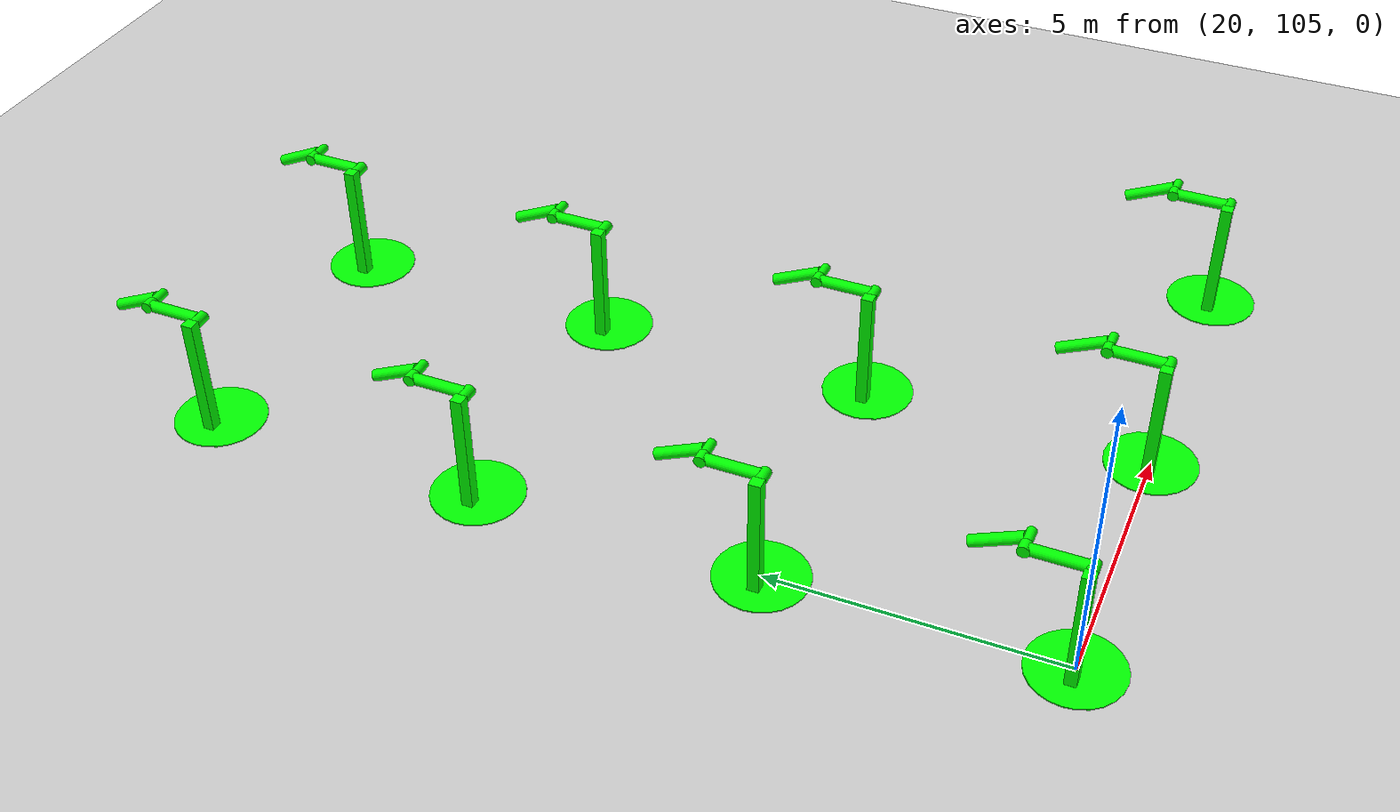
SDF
<sdf version="1.6">
 <world name="double_pendulums">
  <model name="ground_plane">
   <static>true</static>
   <link name="link">
    <collision name="collision">
     <geometry><plane><normal>0 0 1</normal><size>100 100</size></plane></geometry>
    </collision>
    <visual name="visual">
     <geometry><plane><normal>0 0 1</normal><size>100 100</size></plane></geometry>
     <material>
      <ambient>0.8 0.8 0.8 1</ambient>
      <diffuse>0.8 0.8 0.8 1</diffuse>
      <specular>0.8 0.8 0.8 1</specular>
     </material>
    </visual>
   </link>
  </model>
  <model name="dbl_pendulum_539">
   <pose>20 105 0 0 0 0</pose>
   <link name="base">
    <inertial><mass>100</mass></inertial>
    <visual name="vis_plate_on_ground">
     <pose>0 0 0.01 0 0 0</pose>
     <geometry><cylinder><radius>0.8</radius><length>0.02</length></cylinder></geometry>
     <material><ambient>0 1 0 1</ambient><diffuse>0 1 0 1</diffuse><specular>0 1 0 1</specular></material>
    </visual>
    <visual name="vis_pole">
     <pose>-0.275 0 1.1 0 0 0</pose>
     <geometry><box><size>0.2 0.2 2.2</size></box></geometry>
     <material><ambient>0 1 0 1</ambient><diffuse>0 1 0 1</diffuse><specular>0 1 0 1</specular></material>
    </visual>
    <collision name="col_plate_on_ground">
     <pose>0 0 0.01 0 0 0</pose>
     <geometry><cylinder><radius>0.8</radius><length>0.02</length></cylinder></geometry>
    </collision>
    <collision name="col_pole">
     <pose>-0.275 0 1.1 0 0 0</pose>
     <geometry><box><size>0.2 0.2 2.2</size></box></geometry>
    </collision>
   </link>
   <link name="upper_link">
    <pose>0 0 2.1 -1.5708 0 0</pose>
    <inertial><pose>0 0 0.5 0 0 0</pose></inertial>
    <visual name="vis_upper_joint">
     <pose>-0.05 0 0 0 1.5708 0</pose>
     <geometry><cylinder><radius>0.1</radius><length>0.3</length></cylinder></geometry>
     <material><ambient>0 1 0 1</ambient><diffuse>0 1 0 1</diffuse><specular>0 1 0 1</specular></material>
    </visual>
    <visual name="vis_lower_joint">
     <pose>0 0 1.0 0 1.5708 0</pose>
     <geometry><cylinder><radius>0.1</radius><length>0.2</length></cylinder></geometry>
     <material><ambient>0 1 0 1</ambient><diffuse>0 1 0 1</diffuse><specular>0 1 0 1</specular></material>
    </visual>
    <visual name="vis_cylinder">
     <pose>0 0 0.5 0 0 0</pose>
     <geometry><cylinder><radius>0.1</radius><length>0.9</length></cylinder></geometry>
     <material><ambient>0 1 0 1</ambient><diffuse>0 1 0 1</diffuse><specular>0 1 0 1</specular></material>
    </visual>
    <collision name="col_upper_joint">
     <pose>-0.05 0 0 0 1.5708 0</pose>
     <geometry><cylinder><radius>0.1</radius><length>0.3</length></cylinder></geometry>
    </collision>
    <collision name="col_lower_joint">
     <pose>0 0 1.0 0 1.5708 0</pose>
     <geometry><cylinder><radius>0.1</radius><length>0.2</length></cylinder></geometry>
    </collision>
    <collision name="col_cylinder">
     <pose>0 0 0.5 0 0 0</pose>
     <geometry><cylinder><radius>0.1</radius><length>0.9</length></cylinder></geometry>
    </collision>
   </link>
   <link name="lower_link">
    <pose>0.25 1.0 2.1 -2 0 0</pose>
    <inertial><pose>0 0 0.5 0 0 0</pose></inertial>
    <visual name="vis_lower_joint">
     <pose>0 0 0 0 1.5708 0</pose>
     <geometry><cylinder><radius>0.08</radius><length>0.3</length></cylinder></geometry>
     <material><ambient>0 1 0 1</ambient><diffuse>0 1 0 1</diffuse><specular>0 1 0 1</specular></material>
    </visual>
    <visual name="vis_cylinder">
     <pose>0 0 0.5 0 0 0</pose>
     <geometry><cylinder><radius>0.1</radius><length>0.9</length></cylinder></geometry>
     <material><ambient>0 1 0 1</ambient><diffuse>0 1 0 1</diffuse><specular>0 1 0 1</specular></material>
    </visual>
    <collision name="col_lower_joint">
     <pose>0 0 0 0 1.5708 0</pose>
     <geometry><cylinder><radius>0.08</radius><length>0.3</length></cylinder></geometry>
    </collision>
    <collision name="col_cylinder">
     <pose>0 0 0.5 0 0 0</pose>
     <geometry><cylinder><radius>0.1</radius><length>0.9</length></cylinder></geometry>
    </collision>
   </link>
   <joint name="upper_joint" type="revolute">
    <parent>base</parent>
    <child>upper_link</child>
    <axis><xyz>1.0 0 0</xyz></axis>
   </joint>
   <joint name="lower_joint" type="revolute">
    <parent>upper_link</parent>
    <child>lower_link</child>
    <axis><xyz>1.0 0 0</xyz></axis>
   </joint>
  </model>
  <model name="dbl_pendulum_540">
   <pose>25 105 0 0 0 0</pose>
   <link name="base">
    <inertial><mass>100</mass></inertial>
    <visual name="vis_plate_on_ground">
     <pose>0 0 0.01 0 0 0</pose>
     <geometry><cylinder><radius>0.8</radius><length>0.02</length></cylinder></geometry>
     <material><ambient>0 1 0 1</ambient><diffuse>0 1 0 1</diffuse><specular>0 1 0 1</specular></material>
    </visual>
    <visual name="vis_pole">
     <pose>-0.275 0 1.1 0 0 0</pose>
     <geometry><box><size>0.2 0.2 2.2</size></box></geometry>
     <material><ambient>0 1 0 1</ambient><diffuse>0 1 0 1</diffuse><specular>0 1 0 1</specular></material>
    </visual>
    <collision name="col_plate_on_ground">
     <pose>0 0 0.01 0 0 0</pose>
     <geometry><cylinder><radius>0.8</radius><length>0.02</length></cylinder></geometry>
    </collision>
    <collision name="col_pole">
     <pose>-0.275 0 1.1 0 0 0</pose>
     <geometry><box><size>0.2 0.2 2.2</size></box></geometry>
    </collision>
   </link>
   <link name="upper_link">
    <pose>0 0 2.1 -1.5708 0 0</pose>
    <inertial><pose>0 0 0.5 0 0 0</pose></inertial>
    <visual name="vis_upper_joint">
     <pose>-0.05 0 0 0 1.5708 0</pose>
     <geometry><cylinder><radius>0.1</radius><length>0.3</length></cylinder></geometry>
     <material><ambient>0 1 0 1</ambient><diffuse>0 1 0 1</diffuse><specular>0 1 0 1</specular></material>
    </visual>
    <visual name="vis_lower_joint">
     <pose>0 0 1.0 0 1.5708 0</pose>
     <geometry><cylinder><radius>0.1</radius><length>0.2</length></cylinder></geometry>
     <material><ambient>0 1 0 1</ambient><diffuse>0 1 0 1</diffuse><specular>0 1 0 1</specular></material>
    </visual>
    <visual name="vis_cylinder">
     <pose>0 0 0.5 0 0 0</pose>
     <geometry><cylinder><radius>0.1</radius><length>0.9</length></cylinder></geometry>
     <material><ambient>0 1 0 1</ambient><diffuse>0 1 0 1</diffuse><specular>0 1 0 1</specular></material>
    </visual>
    <collision name="col_upper_joint">
     <pose>-0.05 0 0 0 1.5708 0</pose>
     <geometry><cylinder><radius>0.1</radius><length>0.3</length></cylinder></geometry>
    </collision>
    <collision name="col_lower_joint">
     <pose>0 0 1.0 0 1.5708 0</pose>
     <geometry><cylinder><radius>0.1</radius><length>0.2</length></cylinder></geometry>
    </collision>
    <collision name="col_cylinder">
     <pose>0 0 0.5 0 0 0</pose>
     <geometry><cylinder><radius>0.1</radius><length>0.9</length></cylinder></geometry>
    </collision>
   </link>
   <link name="lower_link">
    <pose>0.25 1.0 2.1 -2 0 0</pose>
    <inertial><pose>0 0 0.5 0 0 0</pose></inertial>
    <visual name="vis_lower_joint">
     <pose>0 0 0 0 1.5708 0</pose>
     <geometry><cylinder><radius>0.08</radius><length>0.3</length></cylinder></geometry>
     <material><ambient>0 1 0 1</ambient><diffuse>0 1 0 1</diffuse><specular>0 1 0 1</specular></material>
    </visual>
    <visual name="vis_cylinder">
     <pose>0 0 0.5 0 0 0</pose>
     <geometry><cylinder><radius>0.1</radius><length>0.9</length></cylinder></geometry>
     <material><ambient>0 1 0 1</ambient><diffuse>0 1 0 1</diffuse><specular>0 1 0 1</specular></material>
    </visual>
    <collision name="col_lower_joint">
     <pose>0 0 0 0 1.5708 0</pose>
     <geometry><cylinder><radius>0.08</radius><length>0.3</length></cylinder></geometry>
    </collision>
    <collision name="col_cylinder">
     <pose>0 0 0.5 0 0 0</pose>
     <geometry><cylinder><radius>0.1</radius><length>0.9</length></cylinder></geometry>
    </collision>
   </link>
   <joint name="upper_joint" type="revolute">
    <parent>base</parent>
    <child>upper_link</child>
    <axis><xyz>1.0 0 0</xyz></axis>
   </joint>
   <joint name="lower_joint" type="revolute">
    <parent>upper_link</parent>
    <child>lower_link</child>
    <axis><xyz>1.0 0 0</xyz></axis>
   </joint>
  </model>
  <model name="dbl_pendulum_541">
   <pose>30 105 0 0 0 0</pose>
   <link name="base">
    <inertial><mass>100</mass></inertial>
    <visual name="vis_plate_on_ground">
     <pose>0 0 0.01 0 0 0</pose>
     <geometry><cylinder><radius>0.8</radius><length>0.02</length></cylinder></geometry>
     <material><ambient>0 1 0 1</ambient><diffuse>0 1 0 1</diffuse><specular>0 1 0 1</specular></material>
    </visual>
    <visual name="vis_pole">
     <pose>-0.275 0 1.1 0 0 0</pose>
     <geometry><box><size>0.2 0.2 2.2</size></box></geometry>
     <material><ambient>0 1 0 1</ambient><diffuse>0 1 0 1</diffuse><specular>0 1 0 1</specular></material>
    </visual>
    <collision name="col_plate_on_ground">
     <pose>0 0 0.01 0 0 0</pose>
     <geometry><cylinder><radius>0.8</radius><length>0.02</length></cylinder></geometry>
    </collision>
    <collision name="col_pole">
     <pose>-0.275 0 1.1 0 0 0</pose>
     <geometry><box><size>0.2 0.2 2.2</size></box></geometry>
    </collision>
   </link>
   <link name="upper_link">
    <pose>0 0 2.1 -1.5708 0 0</pose>
    <inertial><pose>0 0 0.5 0 0 0</pose></inertial>
    <visual name="vis_upper_joint">
     <pose>-0.05 0 0 0 1.5708 0</pose>
     <geometry><cylinder><radius>0.1</radius><length>0.3</length></cylinder></geometry>
     <material><ambient>0 1 0 1</ambient><diffuse>0 1 0 1</diffuse><specular>0 1 0 1</specular></material>
    </visual>
    <visual name="vis_lower_joint">
     <pose>0 0 1.0 0 1.5708 0</pose>
     <geometry><cylinder><radius>0.1</radius><length>0.2</length></cylinder></geometry>
     <material><ambient>0 1 0 1</ambient><diffuse>0 1 0 1</diffuse><specular>0 1 0 1</specular></material>
    </visual>
    <visual name="vis_cylinder">
     <pose>0 0 0.5 0 0 0</pose>
     <geometry><cylinder><radius>0.1</radius><length>0.9</length></cylinder></geometry>
     <material><ambient>0 1 0 1</ambient><diffuse>0 1 0 1</diffuse><specular>0 1 0 1</specular></material>
    </visual>
    <collision name="col_upper_joint">
     <pose>-0.05 0 0 0 1.5708 0</pose>
     <geometry><cylinder><radius>0.1</radius><length>0.3</length></cylinder></geometry>
    </collision>
    <collision name="col_lower_joint">
     <pose>0 0 1.0 0 1.5708 0</pose>
     <geometry><cylinder><radius>0.1</radius><length>0.2</length></cylinder></geometry>
    </collision>
    <collision name="col_cylinder">
     <pose>0 0 0.5 0 0 0</pose>
     <geometry><cylinder><radius>0.1</radius><length>0.9</length></cylinder></geometry>
    </collision>
   </link>
   <link name="lower_link">
    <pose>0.25 1.0 2.1 -2 0 0</pose>
    <inertial><pose>0 0 0.5 0 0 0</pose></inertial>
    <visual name="vis_lower_joint">
     <pose>0 0 0 0 1.5708 0</pose>
     <geometry><cylinder><radius>0.08</radius><length>0.3</length></cylinder></geometry>
     <material><ambient>0 1 0 1</ambient><diffuse>0 1 0 1</diffuse><specular>0 1 0 1</specular></material>
    </visual>
    <visual name="vis_cylinder">
     <pose>0 0 0.5 0 0 0</pose>
     <geometry><cylinder><radius>0.1</radius><length>0.9</length></cylinder></geometry>
     <material><ambient>0 1 0 1</ambient><diffuse>0 1 0 1</diffuse><specular>0 1 0 1</specular></material>
    </visual>
    <collision name="col_lower_joint">
     <pose>0 0 0 0 1.5708 0</pose>
     <geometry><cylinder><radius>0.08</radius><length>0.3</length></cylinder></geometry>
    </collision>
    <collision name="col_cylinder">
     <pose>0 0 0.5 0 0 0</pose>
     <geometry><cylinder><radius>0.1</radius><length>0.9</length></cylinder></geometry>
    </collision>
   </link>
   <joint name="upper_joint" type="revolute">
    <parent>base</parent>
    <child>upper_link</child>
    <axis><xyz>1.0 0 0</xyz></axis>
   </joint>
   <joint name="lower_joint" type="revolute">
    <parent>upper_link</parent>
    <child>lower_link</child>
    <axis><xyz>1.0 0 0</xyz></axis>
   </joint>
  </model>
  <model name="dbl_pendulum_564">
   <pose>20 110 0 0 0 0</pose>
   <link name="base">
    <inertial><mass>100</mass></inertial>
    <visual name="vis_plate_on_ground">
     <pose>0 0 0.01 0 0 0</pose>
     <geometry><cylinder><radius>0.8</radius><length>0.02</length></cylinder></geometry>
     <material><ambient>0 1 0 1</ambient><diffuse>0 1 0 1</diffuse><specular>0 1 0 1</specular></material>
    </visual>
    <visual name="vis_pole">
     <pose>-0.275 0 1.1 0 0 0</pose>
     <geometry><box><size>0.2 0.2 2.2</size></box></geometry>
     <material><ambient>0 1 0 1</ambient><diffuse>0 1 0 1</diffuse><specular>0 1 0 1</specular></material>
    </visual>
    <collision name="col_plate_on_ground">
     <pose>0 0 0.01 0 0 0</pose>
     <geometry><cylinder><radius>0.8</radius><length>0.02</length></cylinder></geometry>
    </collision>
    <collision name="col_pole">
     <pose>-0.275 0 1.1 0 0 0</pose>
     <geometry><box><size>0.2 0.2 2.2</size></box></geometry>
    </collision>
   </link>
   <link name="upper_link">
    <pose>0 0 2.1 -1.5708 0 0</pose>
    <inertial><pose>0 0 0.5 0 0 0</pose></inertial>
    <visual name="vis_upper_joint">
     <pose>-0.05 0 0 0 1.5708 0</pose>
     <geometry><cylinder><radius>0.1</radius><length>0.3</length></cylinder></geometry>
     <material><ambient>0 1 0 1</ambient><diffuse>0 1 0 1</diffuse><specular>0 1 0 1</specular></material>
    </visual>
    <visual name="vis_lower_joint">
     <pose>0 0 1.0 0 1.5708 0</pose>
     <geometry><cylinder><radius>0.1</radius><length>0.2</length></cylinder></geometry>
     <material><ambient>0 1 0 1</ambient><diffuse>0 1 0 1</diffuse><specular>0 1 0 1</specular></material>
    </visual>
    <visual name="vis_cylinder">
     <pose>0 0 0.5 0 0 0</pose>
     <geometry><cylinder><radius>0.1</radius><length>0.9</length></cylinder></geometry>
     <material><ambient>0 1 0 1</ambient><diffuse>0 1 0 1</diffuse><specular>0 1 0 1</specular></material>
    </visual>
    <collision name="col_upper_joint">
     <pose>-0.05 0 0 0 1.5708 0</pose>
     <geometry><cylinder><radius>0.1</radius><length>0.3</length></cylinder></geometry>
    </collision>
    <collision name="col_lower_joint">
     <pose>0 0 1.0 0 1.5708 0</pose>
     <geometry><cylinder><radius>0.1</radius><length>0.2</length></cylinder></geometry>
    </collision>
    <collision name="col_cylinder">
     <pose>0 0 0.5 0 0 0</pose>
     <geometry><cylinder><radius>0.1</radius><length>0.9</length></cylinder></geometry>
    </collision>
   </link>
   <link name="lower_link">
    <pose>0.25 1.0 2.1 -2 0 0</pose>
    <inertial><pose>0 0 0.5 0 0 0</pose></inertial>
    <visual name="vis_lower_joint">
     <pose>0 0 0 0 1.5708 0</pose>
     <geometry><cylinder><radius>0.08</radius><length>0.3</length></cylinder></geometry>
     <material><ambient>0 1 0 1</ambient><diffuse>0 1 0 1</diffuse><specular>0 1 0 1</specular></material>
    </visual>
    <visual name="vis_cylinder">
     <pose>0 0 0.5 0 0 0</pose>
     <geometry><cylinder><radius>0.1</radius><length>0.9</length></cylinder></geometry>
     <material><ambient>0 1 0 1</ambient><diffuse>0 1 0 1</diffuse><specular>0 1 0 1</specular></material>
    </visual>
    <collision name="col_lower_joint">
     <pose>0 0 0 0 1.5708 0</pose>
     <geometry><cylinder><radius>0.08</radius><length>0.3</length></cylinder></geometry>
    </collision>
    <collision name="col_cylinder">
     <pose>0 0 0.5 0 0 0</pose>
     <geometry><cylinder><radius>0.1</radius><length>0.9</length></cylinder></geometry>
    </collision>
   </link>
   <joint name="upper_joint" type="revolute">
    <parent>base</parent>
    <child>upper_link</child>
    <axis><xyz>1.0 0 0</xyz></axis>
   </joint>
   <joint name="lower_joint" type="revolute">
    <parent>upper_link</parent>
    <child>lower_link</child>
    <axis><xyz>1.0 0 0</xyz></axis>
   </joint>
  </model>
  <model name="dbl_pendulum_565">
   <pose>25 110 0 0 0 0</pose>
   <link name="base">
    <inertial><mass>100</mass></inertial>
    <visual name="vis_plate_on_ground">
     <pose>0 0 0.01 0 0 0</pose>
     <geometry><cylinder><radius>0.8</radius><length>0.02</length></cylinder></geometry>
     <material><ambient>0 1 0 1</ambient><diffuse>0 1 0 1</diffuse><specular>0 1 0 1</specular></material>
    </visual>
    <visual name="vis_pole">
     <pose>-0.275 0 1.1 0 0 0</pose>
     <geometry><box><size>0.2 0.2 2.2</size></box></geometry>
     <material><ambient>0 1 0 1</ambient><diffuse>0 1 0 1</diffuse><specular>0 1 0 1</specular></material>
    </visual>
    <collision name="col_plate_on_ground">
     <pose>0 0 0.01 0 0 0</pose>
     <geometry><cylinder><radius>0.8</radius><length>0.02</length></cylinder></geometry>
    </collision>
    <collision name="col_pole">
     <pose>-0.275 0 1.1 0 0 0</pose>
     <geometry><box><size>0.2 0.2 2.2</size></box></geometry>
    </collision>
   </link>
   <link name="upper_link">
    <pose>0 0 2.1 -1.5708 0 0</pose>
    <inertial><pose>0 0 0.5 0 0 0</pose></inertial>
    <visual name="vis_upper_joint">
     <pose>-0.05 0 0 0 1.5708 0</pose>
     <geometry><cylinder><radius>0.1</radius><length>0.3</length></cylinder></geometry>
     <material><ambient>0 1 0 1</ambient><diffuse>0 1 0 1</diffuse><specular>0 1 0 1</specular></material>
    </visual>
    <visual name="vis_lower_joint">
     <pose>0 0 1.0 0 1.5708 0</pose>
     <geometry><cylinder><radius>0.1</radius><length>0.2</length></cylinder></geometry>
     <material><ambient>0 1 0 1</ambient><diffuse>0 1 0 1</diffuse><specular>0 1 0 1</specular></material>
    </visual>
    <visual name="vis_cylinder">
     <pose>0 0 0.5 0 0 0</pose>
     <geometry><cylinder><radius>0.1</radius><length>0.9</length></cylinder></geometry>
     <material><ambient>0 1 0 1</ambient><diffuse>0 1 0 1</diffuse><specular>0 1 0 1</specular></material>
    </visual>
    <collision name="col_upper_joint">
     <pose>-0.05 0 0 0 1.5708 0</pose>
     <geometry><cylinder><radius>0.1</radius><length>0.3</length></cylinder></geometry>
    </collision>
    <collision name="col_lower_joint">
     <pose>0 0 1.0 0 1.5708 0</pose>
     <geometry><cylinder><radius>0.1</radius><length>0.2</length></cylinder></geometry>
    </collision>
    <collision name="col_cylinder">
     <pose>0 0 0.5 0 0 0</pose>
     <geometry><cylinder><radius>0.1</radius><length>0.9</length></cylinder></geometry>
    </collision>
   </link>
   <link name="lower_link">
    <pose>0.25 1.0 2.1 -2 0 0</pose>
    <inertial><pose>0 0 0.5 0 0 0</pose></inertial>
    <visual name="vis_lower_joint">
     <pose>0 0 0 0 1.5708 0</pose>
     <geometry><cylinder><radius>0.08</radius><length>0.3</length></cylinder></geometry>
     <material><ambient>0 1 0 1</ambient><diffuse>0 1 0 1</diffuse><specular>0 1 0 1</specular></material>
    </visual>
    <visual name="vis_cylinder">
     <pose>0 0 0.5 0 0 0</pose>
     <geometry><cylinder><radius>0.1</radius><length>0.9</length></cylinder></geometry>
     <material><ambient>0 1 0 1</ambient><diffuse>0 1 0 1</diffuse><specular>0 1 0 1</specular></material>
    </visual>
    <collision name="col_lower_joint">
     <pose>0 0 0 0 1.5708 0</pose>
     <geometry><cylinder><radius>0.08</radius><length>0.3</length></cylinder></geometry>
    </collision>
    <collision name="col_cylinder">
     <pose>0 0 0.5 0 0 0</pose>
     <geometry><cylinder><radius>0.1</radius><length>0.9</length></cylinder></geometry>
    </collision>
   </link>
   <joint name="upper_joint" type="revolute">
    <parent>base</parent>
    <child>upper_link</child>
    <axis><xyz>1.0 0 0</xyz></axis>
   </joint>
   <joint name="lower_joint" type="revolute">
    <parent>upper_link</parent>
    <child>lower_link</child>
    <axis><xyz>1.0 0 0</xyz></axis>
   </joint>
  </model>
  <model name="dbl_pendulum_589">
   <pose>20 115 0 0 0 0</pose>
   <link name="base">
    <inertial><mass>100</mass></inertial>
    <visual name="vis_plate_on_ground">
     <pose>0 0 0.01 0 0 0</pose>
     <geometry><cylinder><radius>0.8</radius><length>0.02</length></cylinder></geometry>
     <material><ambient>0 1 0 1</ambient><diffuse>0 1 0 1</diffuse><specular>0 1 0 1</specular></material>
    </visual>
    <visual name="vis_pole">
     <pose>-0.275 0 1.1 0 0 0</pose>
     <geometry><box><size>0.2 0.2 2.2</size></box></geometry>
     <material><ambient>0 1 0 1</ambient><diffuse>0 1 0 1</diffuse><specular>0 1 0 1</specular></material>
    </visual>
    <collision name="col_plate_on_ground">
     <pose>0 0 0.01 0 0 0</pose>
     <geometry><cylinder><radius>0.8</radius><length>0.02</length></cylinder></geometry>
    </collision>
    <collision name="col_pole">
     <pose>-0.275 0 1.1 0 0 0</pose>
     <geometry><box><size>0.2 0.2 2.2</size></box></geometry>
    </collision>
   </link>
   <link name="upper_link">
    <pose>0 0 2.1 -1.5708 0 0</pose>
    <inertial><pose>0 0 0.5 0 0 0</pose></inertial>
    <visual name="vis_upper_joint">
     <pose>-0.05 0 0 0 1.5708 0</pose>
     <geometry><cylinder><radius>0.1</radius><length>0.3</length></cylinder></geometry>
     <material><ambient>0 1 0 1</ambient><diffuse>0 1 0 1</diffuse><specular>0 1 0 1</specular></material>
    </visual>
    <visual name="vis_lower_joint">
     <pose>0 0 1.0 0 1.5708 0</pose>
     <geometry><cylinder><radius>0.1</radius><length>0.2</length></cylinder></geometry>
     <material><ambient>0 1 0 1</ambient><diffuse>0 1 0 1</diffuse><specular>0 1 0 1</specular></material>
    </visual>
    <visual name="vis_cylinder">
     <pose>0 0 0.5 0 0 0</pose>
     <geometry><cylinder><radius>0.1</radius><length>0.9</length></cylinder></geometry>
     <material><ambient>0 1 0 1</ambient><diffuse>0 1 0 1</diffuse><specular>0 1 0 1</specular></material>
    </visual>
    <collision name="col_upper_joint">
     <pose>-0.05 0 0 0 1.5708 0</pose>
     <geometry><cylinder><radius>0.1</radius><length>0.3</length></cylinder></geometry>
    </collision>
    <collision name="col_lower_joint">
     <pose>0 0 1.0 0 1.5708 0</pose>
     <geometry><cylinder><radius>0.1</radius><length>0.2</length></cylinder></geometry>
    </collision>
    <collision name="col_cylinder">
     <pose>0 0 0.5 0 0 0</pose>
     <geometry><cylinder><radius>0.1</radius><length>0.9</length></cylinder></geometry>
    </collision>
   </link>
   <link name="lower_link">
    <pose>0.25 1.0 2.1 -2 0 0</pose>
    <inertial><pose>0 0 0.5 0 0 0</pose></inertial>
    <visual name="vis_lower_joint">
     <pose>0 0 0 0 1.5708 0</pose>
     <geometry><cylinder><radius>0.08</radius><length>0.3</length></cylinder></geometry>
     <material><ambient>0 1 0 1</ambient><diffuse>0 1 0 1</diffuse><specular>0 1 0 1</specular></material>
    </visual>
    <visual name="vis_cylinder">
     <pose>0 0 0.5 0 0 0</pose>
     <geometry><cylinder><radius>0.1</radius><length>0.9</length></cylinder></geometry>
     <material><ambient>0 1 0 1</ambient><diffuse>0 1 0 1</diffuse><specular>0 1 0 1</specular></material>
    </visual>
    <collision name="col_lower_joint">
     <pose>0 0 0 0 1.5708 0</pose>
     <geometry><cylinder><radius>0.08</radius><length>0.3</length></cylinder></geometry>
    </collision>
    <collision name="col_cylinder">
     <pose>0 0 0.5 0 0 0</pose>
     <geometry><cylinder><radius>0.1</radius><length>0.9</length></cylinder></geometry>
    </collision>
   </link>
   <joint name="upper_joint" type="revolute">
    <parent>base</parent>
    <child>upper_link</child>
    <axis><xyz>1.0 0 0</xyz></axis>
   </joint>
   <joint name="lower_joint" type="revolute">
    <parent>upper_link</parent>
    <child>lower_link</child>
    <axis><xyz>1.0 0 0</xyz></axis>
   </joint>
  </model>
  <model name="dbl_pendulum_590">
   <pose>25 115 0 0 0 0</pose>
   <link name="base">
    <inertial><mass>100</mass></inertial>
    <visual name="vis_plate_on_ground">
     <pose>0 0 0.01 0 0 0</pose>
     <geometry><cylinder><radius>0.8</radius><length>0.02</length></cylinder></geometry>
     <material><ambient>0 1 0 1</ambient><diffuse>0 1 0 1</diffuse><specular>0 1 0 1</specular></material>
    </visual>
    <visual name="vis_pole">
     <pose>-0.275 0 1.1 0 0 0</pose>
     <geometry><box><size>0.2 0.2 2.2</size></box></geometry>
     <material><ambient>0 1 0 1</ambient><diffuse>0 1 0 1</diffuse><specular>0 1 0 1</specular></material>
    </visual>
    <collision name="col_plate_on_ground">
     <pose>0 0 0.01 0 0 0</pose>
     <geometry><cylinder><radius>0.8</radius><length>0.02</length></cylinder></geometry>
    </collision>
    <collision name="col_pole">
     <pose>-0.275 0 1.1 0 0 0</pose>
     <geometry><box><size>0.2 0.2 2.2</size></box></geometry>
    </collision>
   </link>
   <link name="upper_link">
    <pose>0 0 2.1 -1.5708 0 0</pose>
    <inertial><pose>0 0 0.5 0 0 0</pose></inertial>
    <visual name="vis_upper_joint">
     <pose>-0.05 0 0 0 1.5708 0</pose>
     <geometry><cylinder><radius>0.1</radius><length>0.3</length></cylinder></geometry>
     <material><ambient>0 1 0 1</ambient><diffuse>0 1 0 1</diffuse><specular>0 1 0 1</specular></material>
    </visual>
    <visual name="vis_lower_joint">
     <pose>0 0 1.0 0 1.5708 0</pose>
     <geometry><cylinder><radius>0.1</radius><length>0.2</length></cylinder></geometry>
     <material><ambient>0 1 0 1</ambient><diffuse>0 1 0 1</diffuse><specular>0 1 0 1</specular></material>
    </visual>
    <visual name="vis_cylinder">
     <pose>0 0 0.5 0 0 0</pose>
     <geometry><cylinder><radius>0.1</radius><length>0.9</length></cylinder></geometry>
     <material><ambient>0 1 0 1</ambient><diffuse>0 1 0 1</diffuse><specular>0 1 0 1</specular></material>
    </visual>
    <collision name="col_upper_joint">
     <pose>-0.05 0 0 0 1.5708 0</pose>
     <geometry><cylinder><radius>0.1</radius><length>0.3</length></cylinder></geometry>
    </collision>
    <collision name="col_lower_joint">
     <pose>0 0 1.0 0 1.5708 0</pose>
     <geometry><cylinder><radius>0.1</radius><length>0.2</length></cylinder></geometry>
    </collision>
    <collision name="col_cylinder">
     <pose>0 0 0.5 0 0 0</pose>
     <geometry><cylinder><radius>0.1</radius><length>0.9</length></cylinder></geometry>
    </collision>
   </link>
   <link name="lower_link">
    <pose>0.25 1.0 2.1 -2 0 0</pose>
    <inertial><pose>0 0 0.5 0 0 0</pose></inertial>
    <visual name="vis_lower_joint">
     <pose>0 0 0 0 1.5708 0</pose>
     <geometry><cylinder><radius>0.08</radius><length>0.3</length></cylinder></geometry>
     <material><ambient>0 1 0 1</ambient><diffuse>0 1 0 1</diffuse><specular>0 1 0 1</specular></material>
    </visual>
    <visual name="vis_cylinder">
     <pose>0 0 0.5 0 0 0</pose>
     <geometry><cylinder><radius>0.1</radius><length>0.9</length></cylinder></geometry>
     <material><ambient>0 1 0 1</ambient><diffuse>0 1 0 1</diffuse><specular>0 1 0 1</specular></material>
    </visual>
    <collision name="col_lower_joint">
     <pose>0 0 0 0 1.5708 0</pose>
     <geometry><cylinder><radius>0.08</radius><length>0.3</length></cylinder></geometry>
    </collision>
    <collision name="col_cylinder">
     <pose>0 0 0.5 0 0 0</pose>
     <geometry><cylinder><radius>0.1</radius><length>0.9</length></cylinder></geometry>
    </collision>
   </link>
   <joint name="upper_joint" type="revolute">
    <parent>base</parent>
    <child>upper_link</child>
    <axis><xyz>1.0 0 0</xyz></axis>
   </joint>
   <joint name="lower_joint" type="revolute">
    <parent>upper_link</parent>
    <child>lower_link</child>
    <axis><xyz>1.0 0 0</xyz></axis>
   </joint>
  </model>
  <model name="dbl_pendulum_614">
   <pose>20 120 0 0 0 0</pose>
   <link name="base">
    <inertial><mass>100</mass></inertial>
    <visual name="vis_plate_on_ground">
     <pose>0 0 0.01 0 0 0</pose>
     <geometry><cylinder><radius>0.8</radius><length>0.02</length></cylinder></geometry>
     <material><ambient>0 1 0 1</ambient><diffuse>0 1 0 1</diffuse><specular>0 1 0 1</specular></material>
    </visual>
    <visual name="vis_pole">
     <pose>-0.275 0 1.1 0 0 0</pose>
     <geometry><box><size>0.2 0.2 2.2</size></box></geometry>
     <material><ambient>0 1 0 1</ambient><diffuse>0 1 0 1</diffuse><specular>0 1 0 1</specular></material>
    </visual>
    <collision name="col_plate_on_ground">
     <pose>0 0 0.01 0 0 0</pose>
     <geometry><cylinder><radius>0.8</radius><length>0.02</length></cylinder></geometry>
    </collision>
    <collision name="col_pole">
     <pose>-0.275 0 1.1 0 0 0</pose>
     <geometry><box><size>0.2 0.2 2.2</size></box></geometry>
    </collision>
   </link>
   <link name="upper_link">
    <pose>0 0 2.1 -1.5708 0 0</pose>
    <inertial><pose>0 0 0.5 0 0 0</pose></inertial>
    <visual name="vis_upper_joint">
     <pose>-0.05 0 0 0 1.5708 0</pose>
     <geometry><cylinder><radius>0.1</radius><length>0.3</length></cylinder></geometry>
     <material><ambient>0 1 0 1</ambient><diffuse>0 1 0 1</diffuse><specular>0 1 0 1</specular></material>
    </visual>
    <visual name="vis_lower_joint">
     <pose>0 0 1.0 0 1.5708 0</pose>
     <geometry><cylinder><radius>0.1</radius><length>0.2</length></cylinder></geometry>
     <material><ambient>0 1 0 1</ambient><diffuse>0 1 0 1</diffuse><specular>0 1 0 1</specular></material>
    </visual>
    <visual name="vis_cylinder">
     <pose>0 0 0.5 0 0 0</pose>
     <geometry><cylinder><radius>0.1</radius><length>0.9</length></cylinder></geometry>
     <material><ambient>0 1 0 1</ambient><diffuse>0 1 0 1</diffuse><specular>0 1 0 1</specular></material>
    </visual>
    <collision name="col_upper_joint">
     <pose>-0.05 0 0 0 1.5708 0</pose>
     <geometry><cylinder><radius>0.1</radius><length>0.3</length></cylinder></geometry>
    </collision>
    <collision name="col_lower_joint">
     <pose>0 0 1.0 0 1.5708 0</pose>
     <geometry><cylinder><radius>0.1</radius><length>0.2</length></cylinder></geometry>
    </collision>
    <collision name="col_cylinder">
     <pose>0 0 0.5 0 0 0</pose>
     <geometry><cylinder><radius>0.1</radius><length>0.9</length></cylinder></geometry>
    </collision>
   </link>
   <link name="lower_link">
    <pose>0.25 1.0 2.1 -2 0 0</pose>
    <inertial><pose>0 0 0.5 0 0 0</pose></inertial>
    <visual name="vis_lower_joint">
     <pose>0 0 0 0 1.5708 0</pose>
     <geometry><cylinder><radius>0.08</radius><length>0.3</length></cylinder></geometry>
     <material><ambient>0 1 0 1</ambient><diffuse>0 1 0 1</diffuse><specular>0 1 0 1</specular></material>
    </visual>
    <visual name="vis_cylinder">
     <pose>0 0 0.5 0 0 0</pose>
     <geometry><cylinder><radius>0.1</radius><length>0.9</length></cylinder></geometry>
     <material><ambient>0 1 0 1</ambient><diffuse>0 1 0 1</diffuse><specular>0 1 0 1</specular></material>
    </visual>
    <collision name="col_lower_joint">
     <pose>0 0 0 0 1.5708 0</pose>
     <geometry><cylinder><radius>0.08</radius><length>0.3</length></cylinder></geometry>
    </collision>
    <collision name="col_cylinder">
     <pose>0 0 0.5 0 0 0</pose>
     <geometry><cylinder><radius>0.1</radius><length>0.9</length></cylinder></geometry>
    </collision>
   </link>
   <joint name="upper_joint" type="revolute">
    <parent>base</parent>
    <child>upper_link</child>
    <axis><xyz>1.0 0 0</xyz></axis>
   </joint>
   <joint name="lower_joint" type="revolute">
    <parent>upper_link</parent>
    <child>lower_link</child>
    <axis><xyz>1.0 0 0</xyz></axis>
   </joint>
  </model>
  <model name="dbl_pendulum_615">
   <pose>25 120 0 0 0 0</pose>
   <link name="base">
    <inertial><mass>100</mass></inertial>
    <visual name="vis_plate_on_ground">
     <pose>0 0 0.01 0 0 0</pose>
     <geometry><cylinder><radius>0.8</radius><length>0.02</length></cylinder></geometry>
     <material><ambient>0 1 0 1</ambient><diffuse>0 1 0 1</diffuse><specular>0 1 0 1</specular></material>
    </visual>
    <visual name="vis_pole">
     <pose>-0.275 0 1.1 0 0 0</pose>
     <geometry><box><size>0.2 0.2 2.2</size></box></geometry>
     <material><ambient>0 1 0 1</ambient><diffuse>0 1 0 1</diffuse><specular>0 1 0 1</specular></material>
    </visual>
    <collision name="col_plate_on_ground">
     <pose>0 0 0.01 0 0 0</pose>
     <geometry><cylinder><radius>0.8</radius><length>0.02</length></cylinder></geometry>
    </collision>
    <collision name="col_pole">
     <pose>-0.275 0 1.1 0 0 0</pose>
     <geometry><box><size>0.2 0.2 2.2</size></box></geometry>
    </collision>
   </link>
   <link name="upper_link">
    <pose>0 0 2.1 -1.5708 0 0</pose>
    <inertial><pose>0 0 0.5 0 0 0</pose></inertial>
    <visual name="vis_upper_joint">
     <pose>-0.05 0 0 0 1.5708 0</pose>
     <geometry><cylinder><radius>0.1</radius><length>0.3</length></cylinder></geometry>
     <material><ambient>0 1 0 1</ambient><diffuse>0 1 0 1</diffuse><specular>0 1 0 1</specular></material>
    </visual>
    <visual name="vis_lower_joint">
     <pose>0 0 1.0 0 1.5708 0</pose>
     <geometry><cylinder><radius>0.1</radius><length>0.2</length></cylinder></geometry>
     <material><ambient>0 1 0 1</ambient><diffuse>0 1 0 1</diffuse><specular>0 1 0 1</specular></material>
    </visual>
    <visual name="vis_cylinder">
     <pose>0 0 0.5 0 0 0</pose>
     <geometry><cylinder><radius>0.1</radius><length>0.9</length></cylinder></geometry>
     <material><ambient>0 1 0 1</ambient><diffuse>0 1 0 1</diffuse><specular>0 1 0 1</specular></material>
    </visual>
    <collision name="col_upper_joint">
     <pose>-0.05 0 0 0 1.5708 0</pose>
     <geometry><cylinder><radius>0.1</radius><length>0.3</length></cylinder></geometry>
    </collision>
    <collision name="col_lower_joint">
     <pose>0 0 1.0 0 1.5708 0</pose>
     <geometry><cylinder><radius>0.1</radius><length>0.2</length></cylinder></geometry>
    </collision>
    <collision name="col_cylinder">
     <pose>0 0 0.5 0 0 0</pose>
     <geometry><cylinder><radius>0.1</radius><length>0.9</length></cylinder></geometry>
    </collision>
   </link>
   <link name="lower_link">
    <pose>0.25 1.0 2.1 -2 0 0</pose>
    <inertial><pose>0 0 0.5 0 0 0</pose></inertial>
    <visual name="vis_lower_joint">
     <pose>0 0 0 0 1.5708 0</pose>
     <geometry><cylinder><radius>0.08</radius><length>0.3</length></cylinder></geometry>
     <material><ambient>0 1 0 1</ambient><diffuse>0 1 0 1</diffuse><specular>0 1 0 1</specular></material>
    </visual>
    <visual name="vis_cylinder">
     <pose>0 0 0.5 0 0 0</pose>
     <geometry><cylinder><radius>0.1</radius><length>0.9</length></cylinder></geometry>
     <material><ambient>0 1 0 1</ambient><diffuse>0 1 0 1</diffuse><specular>0 1 0 1</specular></material>
    </visual>
    <collision name="col_lower_joint">
     <pose>0 0 0 0 1.5708 0</pose>
     <geometry><cylinder><radius>0.08</radius><length>0.3</length></cylinder></geometry>
    </collision>
    <collision name="col_cylinder">
     <pose>0 0 0.5 0 0 0</pose>
     <geometry><cylinder><radius>0.1</radius><length>0.9</length></cylinder></geometry>
    </collision>
   </link>
   <joint name="upper_joint" type="revolute">
    <parent>base</parent>
    <child>upper_link</child>
    <axis><xyz>1.0 0 0</xyz></axis>
   </joint>
   <joint name="lower_joint" type="revolute">
    <parent>upper_link</parent>
    <child>lower_link</child>
    <axis><xyz>1.0 0 0</xyz></axis>
   </joint>
  </model>
 </world>
</sdf>
